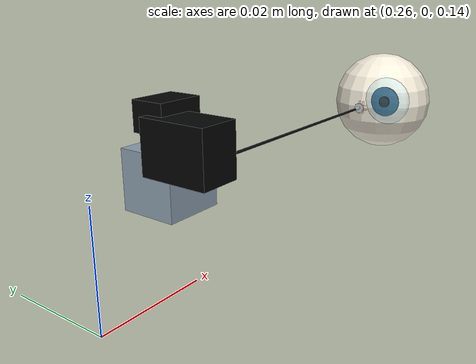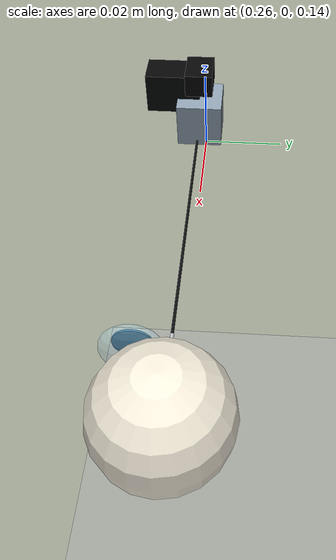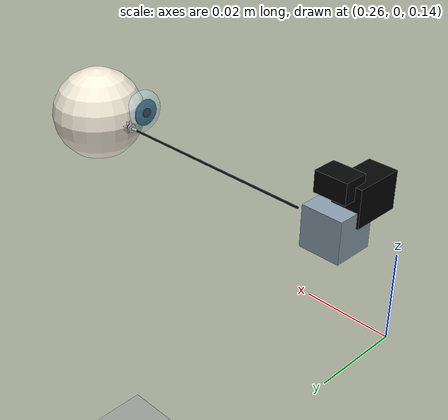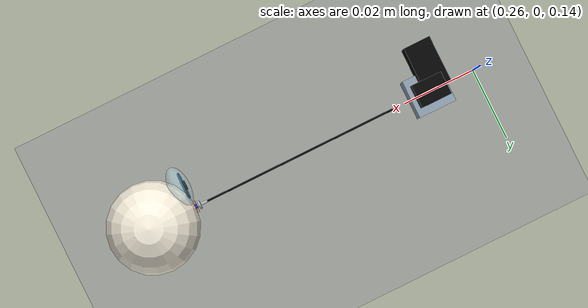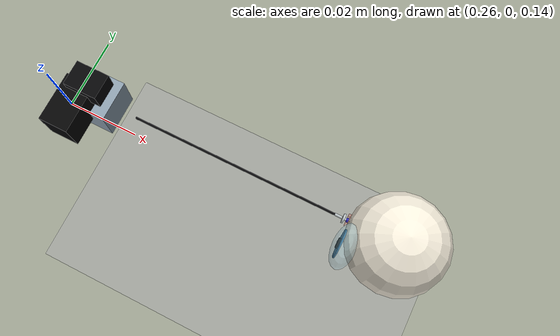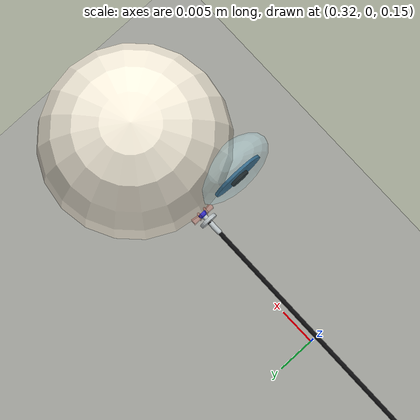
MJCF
<mujoco model="single_arm_ophthalmic_eyeball_scaled_cartesian_tool">
  <compiler angle="radian" coordinate="local"/>
  <option timestep="0.002" gravity="0 0 0" integrator="implicitfast"/>

  <default>
    <joint damping="0.02" armature="0.0002" limited="true"/>
    <geom margin="0.00002" solref="0.006 1" solimp="0.93 0.98 0.001"/>
  </default>

  <visual>
    <global offwidth="640" offheight="480"/>
    <quality shadowsize="2048"/>
    <map znear="0.003" zfar="1.0"/>
  </visual>

  <asset>
    <texture name="matte_tex" type="2d" builtin="checker" rgb1="0.80 0.80 0.78" rgb2="0.68 0.70 0.70" width="128" height="128"/>
    <material name="ground_mat" texture="matte_tex" texrepeat="2 2" rgba="0.82 0.82 0.80 1"/>
    <material name="sclera_mat" rgba="0.96 0.93 0.86 1"/>
    <material name="cornea_mat" rgba="0.72 0.94 1.00 0.32"/>
    <material name="iris_mat" rgba="0.10 0.32 0.48 1"/>
    <material name="pupil_mat" rgba="0.01 0.01 0.012 1"/>
    <material name="cannula_blue_mat" rgba="0.05 0.28 0.82 1"/>
    <material name="cannula_metal_mat" rgba="0.72 0.75 0.76 1"/>
    <material name="cannula_dark_mat" rgba="0.015 0.015 0.018 1"/>
    <material name="port_collision_mat" rgba="0.90 0.16 0.08 0.10"/>
    <material name="tool_mat" rgba="0.05 0.05 0.055 1"/>
    <material name="stage_mat" rgba="0.55 0.62 0.68 1"/>
  </asset>

  <worldbody>
    <light name="key_light" pos="0.18 -0.35 0.45" dir="0.25 0.45 -1" diffuse="0.90 0.90 0.86"/>
    <light name="fill_light" pos="0.25 0.12 0.28" dir="0.7 -0.15 -0.45" diffuse="0.35 0.38 0.40"/>
    <geom name="ground" type="plane" pos="0 0 0" size="1 1 0.01" material="ground_mat" contype="0" conaffinity="0"/>

    <!-- Scale-corrected procedural eye: 24 mm eyeball diameter, no head or eyelids. -->
    <geom name="sclera_visual" type="sphere" pos="0.352 0 0.160" size="0.012" material="sclera_mat" contype="0" conaffinity="0"/>
    <geom name="cornea_visual" type="ellipsoid" pos="0.3415 -0.006 0.162" size="0.0028 0.0056 0.0056" material="cornea_mat" contype="0" conaffinity="0"/>
    <geom name="iris_visual" type="cylinder" pos="0.3403 -0.006 0.162" euler="0 1.57079632679 0" size="0.0035 0.00018" material="iris_mat" contype="0" conaffinity="0"/>
    <geom name="pupil_visual" type="cylinder" pos="0.3399 -0.006 0.162" euler="0 1.57079632679 0" size="0.00125 0.00020" material="pupil_mat" contype="0" conaffinity="0"/>
    <geom name="eye_surface" type="sphere" pos="0.352 0 0.160" size="0.012" rgba="0.96 0.93 0.86 0.0" contype="0" conaffinity="0"/>

    <!-- Ophthalmic trocar/cannula proxy: 25G-like 0.5 mm class sleeve plus small visual flange. -->
    <geom name="cannula_sleeve_visual" type="cylinder" pos="0.3400 0 0.160" euler="0 1.57079632679 0" size="0.00026 0.0030" material="cannula_blue_mat" contype="0" conaffinity="0"/>
    <geom name="cannula_flange_visual" type="cylinder" pos="0.3389 0 0.160" euler="0 1.57079632679 0" size="0.00115 0.00022" material="cannula_metal_mat" contype="0" conaffinity="0"/>
    <geom name="cannula_inner_dark_visual" type="cylinder" pos="0.3386 0 0.160" euler="0 1.57079632679 0" size="0.00034 0.00008" material="cannula_dark_mat" contype="0" conaffinity="0"/>

    <geom name="port_wall_y_pos" type="box" pos="0.340 0.00047 0.160" size="0.00035 0.00012 0.00150" material="port_collision_mat" contype="1" conaffinity="1"/>
    <geom name="port_wall_y_neg" type="box" pos="0.340 -0.00047 0.160" size="0.00035 0.00012 0.00150" material="port_collision_mat" contype="1" conaffinity="1"/>
    <geom name="port_wall_z_pos" type="box" pos="0.340 0 0.16047" size="0.00035 0.00150 0.00012" material="port_collision_mat" contype="1" conaffinity="1"/>
    <geom name="port_wall_z_neg" type="box" pos="0.340 0 0.15953" size="0.00035 0.00150 0.00012" material="port_collision_mat" contype="1" conaffinity="1"/>

    <body name="tool_carriage" pos="0.285 0 0.160">
      <joint name="tool_x" type="slide" axis="1 0 0" range="-0.030 0.080"/>
      <joint name="tool_y" type="slide" axis="0 1 0" range="-0.025 0.025"/>
      <joint name="tool_z" type="slide" axis="0 0 1" range="-0.025 0.025"/>
      <geom name="tool_carriage_geom" type="box" pos="-0.010 0 0" size="0.005 0.005 0.005" material="stage_mat" contype="0" conaffinity="0"/>
      <geom name="eye_in_hand_camera_body" type="box" pos="-0.010 0 0.010" size="0.004 0.003 0.0025" rgba="0.02 0.02 0.025 1" contype="0" conaffinity="0"/>
      <camera name="eye_in_hand" mode="fixed" pos="-0.010 0 0.010" xyaxes="0 -1 0 0 0 1" fovy="41.9741"/>
      <geom name="board_level_camera_body" type="box" pos="-0.012 -0.006 0.006" size="0.0035 0.0060 0.0045" rgba="0.015 0.016 0.018 1" contype="0" conaffinity="0"/>
      <camera name="eye_in_hand_side_macro" mode="fixed" pos="-0.012 -0.006 0.006" xyaxes="0 -1 0 0 0 1" fovy="35.0"/>
      <geom name="instrument_shaft" type="capsule" fromto="0 0 0 0.055 0 0" size="0.00028" material="tool_mat" contype="1" conaffinity="1" density="7800"/>
      <geom name="instrument_tip_visual" type="capsule" fromto="0.052 0 0 0.057 0 0" size="0.00034" material="cannula_metal_mat" contype="0" conaffinity="0"/>
      <site name="tool_tip" pos="0.055 0 0" size="0.00055" rgba="0.05 0.2 1 1"/>
    </body>
  </worldbody>

  <actuator>
    <position name="tool_x_position" joint="tool_x" kp="800" ctrlrange="-0.030 0.080"/>
    <position name="tool_y_position" joint="tool_y" kp="800" ctrlrange="-0.025 0.025"/>
    <position name="tool_z_position" joint="tool_z" kp="800" ctrlrange="-0.025 0.025"/>
  </actuator>
</mujoco>
